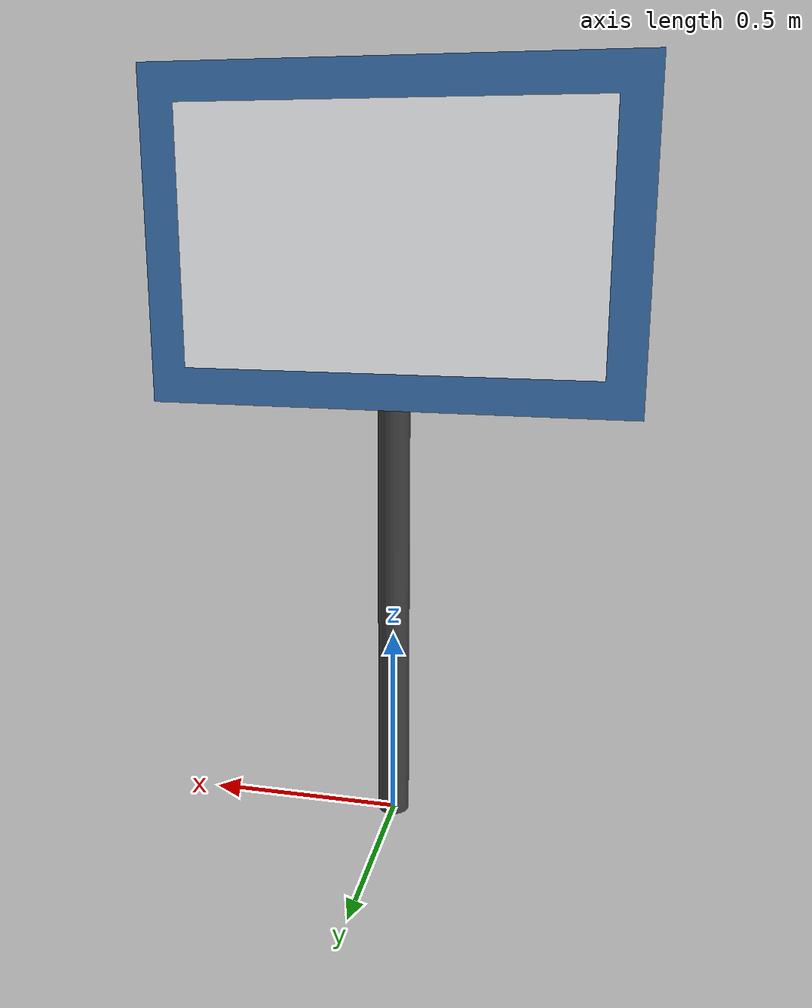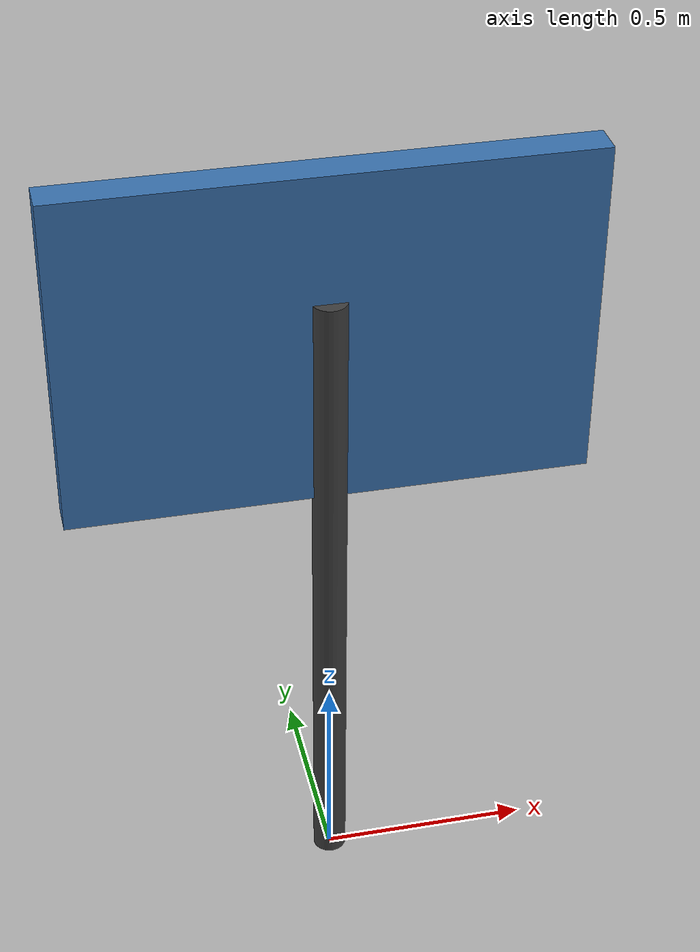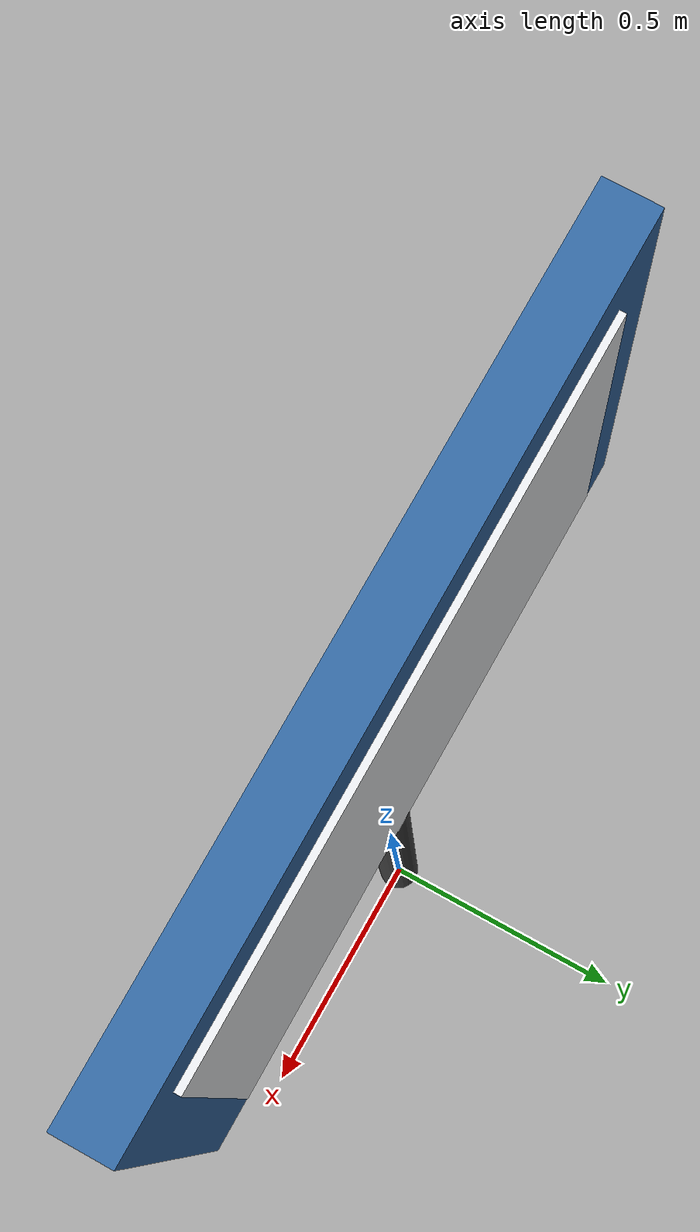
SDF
<?xml version="1.0" ?>
<sdf version="1.6">
  <model name="vln_marker_board">
    <static>true</static>
    <link name="link">
      <collision name="post_collision">
        <pose>0 0 0.8 0 0 0</pose>
        <geometry>
          <cylinder>
            <radius>0.04</radius>
            <length>1.6</length>
          </cylinder>
        </geometry>
      </collision>
      <collision name="panel_collision">
        <pose>0 0.03 1.5 0 0 0</pose>
        <geometry>
          <box>
            <size>1.2 0.08 0.8</size>
          </box>
        </geometry>
      </collision>
      <visual name="post_visual">
        <pose>0 0 0.8 0 0 0</pose>
        <geometry>
          <cylinder>
            <radius>0.04</radius>
            <length>1.6</length>
          </cylinder>
        </geometry>
        <material>
          <ambient>0.18 0.18 0.18 1</ambient>
          <diffuse>0.24 0.24 0.24 1</diffuse>
        </material>
      </visual>
      <visual name="panel_back">
        <pose>0 0.03 1.5 0 0 0</pose>
        <geometry>
          <box>
            <size>1.2 0.08 0.8</size>
          </box>
        </geometry>
        <material>
          <ambient>0.18 0.35 0.55 1</ambient>
          <diffuse>0.22 0.44 0.68 1</diffuse>
        </material>
      </visual>
      <visual name="panel_face">
        <pose>0 0.075 1.5 0 0 0</pose>
        <geometry>
          <box>
            <size>1.02 0.01 0.62</size>
          </box>
        </geometry>
        <material>
          <ambient>0.94 0.95 0.97 1</ambient>
          <diffuse>0.98 0.99 1.0 1</diffuse>
        </material>
      </visual>
    </link>
  </model>
</sdf>
